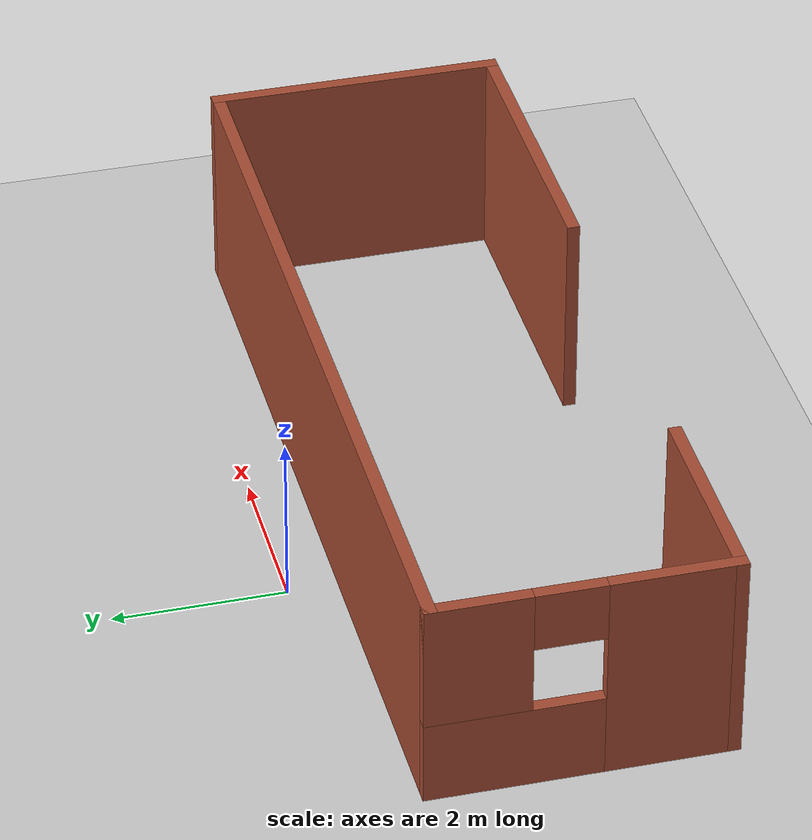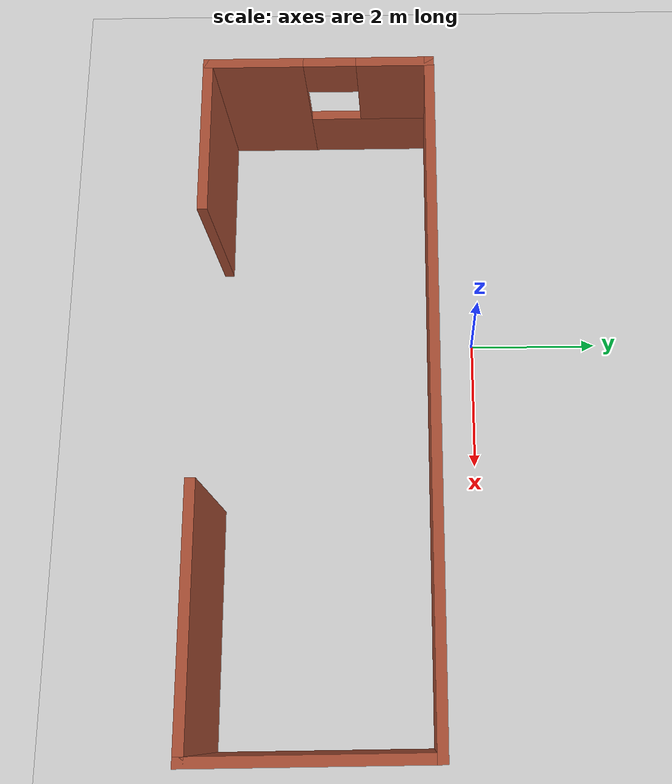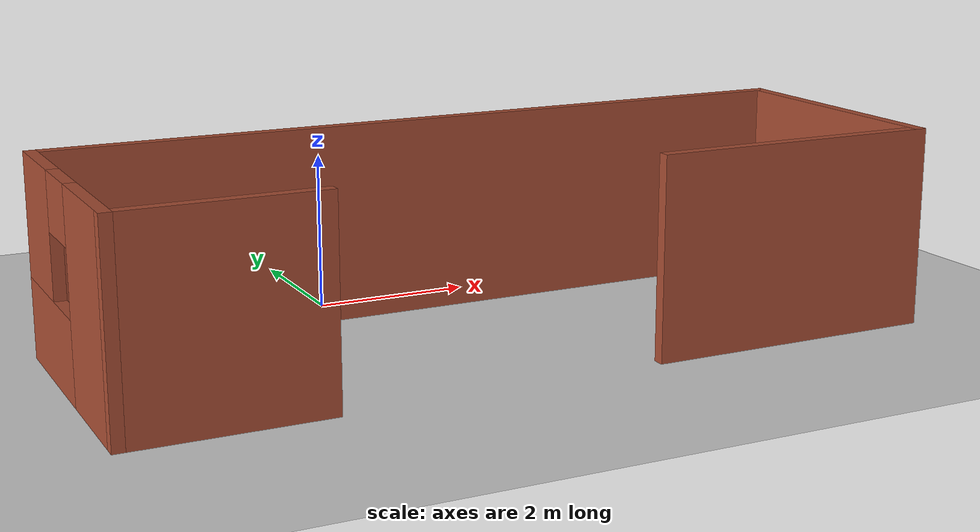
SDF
<sdf version="1.7">
 <world name="default">
  <light name="sun" type="directional">
   <pose>0 0 10 0 -0 0</pose>
   <diffuse>0.8 0.8 0.8 1</diffuse>
   <specular>0.2 0.2 0.2 1</specular>
   <attenuation>
    <range>1000</range>
    <constant>0.9</constant>
    <linear>0.01</linear>
    <quadratic>0.001</quadratic>
   </attenuation>
   <direction>-0.5 0.1 -0.9</direction>
   <spot><inner_angle>0</inner_angle><outer_angle>0</outer_angle><falloff>0</falloff></spot>
  </light>
  <model name="ground_plane">
   <static>1</static>
   <link name="link">
    <collision name="collision">
     <geometry><plane><normal>0 0 1</normal><size>100 100</size></plane></geometry>
     <surface><friction><ode><mu>100</mu><mu2>50</mu2></ode></friction></surface>
    </collision>
    <visual name="visual">
     <cast_shadows>0</cast_shadows>
     <geometry><plane><normal>0 0 1</normal><size>100 100</size></plane></geometry>
     <material>
      <script><uri>file://media/materials/scripts/gazebo.material</uri><name>Gazebo/Grey</name></script>
     </material>
    </visual>
   </link>
  </model>
  <gravity>0 0 -9.8</gravity>
  <magnetic_field>6e-06 2.3e-05 -4.2e-05</magnetic_field>
  <atmosphere type="adiabatic"/>
  <physics type="ode">
   <max_step_size>0.001</max_step_size>
   <real_time_factor>1</real_time_factor>
   <real_time_update_rate>1000</real_time_update_rate>
  </physics>
  <scene><ambient>0.4 0.4 0.4 1</ambient><background>0.7 0.7 0.7 1</background><shadows>1</shadows></scene>
  <spherical_coordinates>
   <surface_model>EARTH_WGS84</surface_model>
   <latitude_deg>0</latitude_deg>
   <longitude_deg>0</longitude_deg>
   <elevation>0</elevation>
   <heading_deg>0</heading_deg>
  </spherical_coordinates>
  <model name="test">
   <pose>1.3 -2.0375 0 0 -0 0</pose>
   <link name="Wall_0">
    <collision name="Wall_0_Collision">
     <geometry><box><size>2.5 0.15 2.5</size></box></geometry>
     <pose>0 0 1.25 0 -0 0</pose>
    </collision>
    <visual name="Wall_0_Visual">
     <pose>0 0 1.25 0 -0 0</pose>
     <geometry><box><size>2.5 0.15 2.5</size></box></geometry>
     <material>
      <script><uri>file://media/materials/scripts/gazebo.material</uri><name>Gazebo/Bricks</name></script>
      <ambient>0.996078 0.47451 0.0196078 1</ambient>
     </material>
     <meta><layer>0</layer></meta>
    </visual>
    <pose>-3.875 -1.9625 0 0 -0 3.14159</pose>
   </link>
   <link name="Wall_1">
    <pose>-5.05 -0.2875 0 0 -0 1.5708</pose>
    <visual name="Wall_1_Visual_0">
     <pose>-0.9925 0 1.25 0 -0 0</pose>
     <geometry><box><size>1.515 0.15 2.5</size></box></geometry>
     <material>
      <script><uri>file://media/materials/scripts/gazebo.material</uri><name>Gazebo/Bricks</name></script>
      <ambient>0.996078 0.47451 0.0196078 1</ambient>
     </material>
     <meta><layer>0</layer></meta>
    </visual>
    <collision name="Wall_1_Collision_0">
     <geometry><box><size>1.515 0.15 2.5</size></box></geometry>
     <pose>-0.9925 0 1.25 0 -0 0</pose>
    </collision>
    <visual name="Wall_1_Visual_1">
     <pose>0.7575 0 0.5 0 -0 0</pose>
     <geometry><box><size>1.985 0.15 1</size></box></geometry>
     <material>
      <script><uri>file://media/materials/scripts/gazebo.material</uri><name>Gazebo/Bricks</name></script>
      <ambient>0.996078 0.47451 0.0196078 1</ambient>
     </material>
     <meta><layer>0</layer></meta>
    </visual>
    <collision name="Wall_1_Collision_1">
     <geometry><box><size>1.985 0.15 1</size></box></geometry>
     <pose>0.7575 0 0.5 0 -0 0</pose>
    </collision>
    <visual name="Wall_1_Visual_2">
     <pose>1.1575 0 1.75 0 -0 0</pose>
     <geometry><box><size>1.185 0.15 1.5</size></box></geometry>
     <material>
      <script><uri>file://media/materials/scripts/gazebo.material</uri><name>Gazebo/Bricks</name></script>
      <ambient>0.996078 0.47451 0.0196078 1</ambient>
     </material>
     <meta><layer>0</layer></meta>
    </visual>
    <collision name="Wall_1_Collision_2">
     <geometry><box><size>1.185 0.15 1.5</size></box></geometry>
     <pose>1.1575 0 1.75 0 -0 0</pose>
    </collision>
    <visual name="Wall_1_Visual_3">
     <pose>0.165 0 2.15 0 -0 0</pose>
     <geometry><box><size>0.8 0.15 0.7</size></box></geometry>
     <material>
      <script><uri>file://media/materials/scripts/gazebo.material</uri><name>Gazebo/Bricks</name></script>
      <ambient>0.996078 0.47451 0.0196078 1</ambient>
     </material>
     <meta><layer>0</layer></meta>
    </visual>
    <collision name="Wall_1_Collision_3">
     <geometry><box><size>0.8 0.15 0.7</size></box></geometry>
     <pose>0.165 0 2.15 0 -0 0</pose>
    </collision>
   </link>
   <link name="Wall_2">
    <collision name="Wall_2_Collision">
     <geometry><box><size>10.25 0.15 2.5</size></box></geometry>
     <pose>0 0 1.25 0 -0 0</pose>
    </collision>
    <visual name="Wall_2_Visual">
     <pose>0 0 1.25 0 -0 0</pose>
     <geometry><box><size>10.25 0.15 2.5</size></box></geometry>
     <material>
      <script><uri>file://media/materials/scripts/gazebo.material</uri><name>Gazebo/Bricks</name></script>
      <ambient>0.996078 0.47451 0.0196078 1</ambient>
     </material>
     <meta><layer>0</layer></meta>
    </visual>
    <pose>0 1.3875 0 0 -0 0</pose>
   </link>
   <link name="Wall_3">
    <collision name="Wall_3_Collision">
     <geometry><box><size>3.5 0.15 2.5</size></box></geometry>
     <pose>0 0 1.25 0 -0 0</pose>
    </collision>
    <visual name="Wall_3_Visual">
     <pose>0 0 1.25 0 -0 0</pose>
     <geometry><box><size>3.5 0.15 2.5</size></box></geometry>
     <material>
      <script><uri>file://media/materials/scripts/gazebo.material</uri><name>Gazebo/Bricks</name></script>
      <ambient>0.996078 0.47451 0.0196078 1</ambient>
     </material>
     <meta><layer>0</layer></meta>
    </visual>
    <pose>5.05 -0.2875 0 0 -0 -1.5708</pose>
   </link>
   <link name="Wall_4">
    <collision name="Wall_4_Collision">
     <geometry><box><size>3.75 0.15 2.5</size></box></geometry>
     <pose>0 0 1.25 0 -0 0</pose>
    </collision>
    <visual name="Wall_4_Visual">
     <pose>0 0 1.25 0 -0 0</pose>
     <geometry><box><size>3.75 0.15 2.5</size></box></geometry>
     <material>
      <script><uri>file://media/materials/scripts/gazebo.material</uri><name>Gazebo/Bricks</name></script>
      <ambient>0.996078 0.47451 0.0196078 1</ambient>
     </material>
     <meta><layer>0</layer></meta>
    </visual>
    <pose>3.25 -1.9625 0 0 -0 3.14159</pose>
   </link>
   <static>1</static>
  </model>
 </world>
</sdf>
